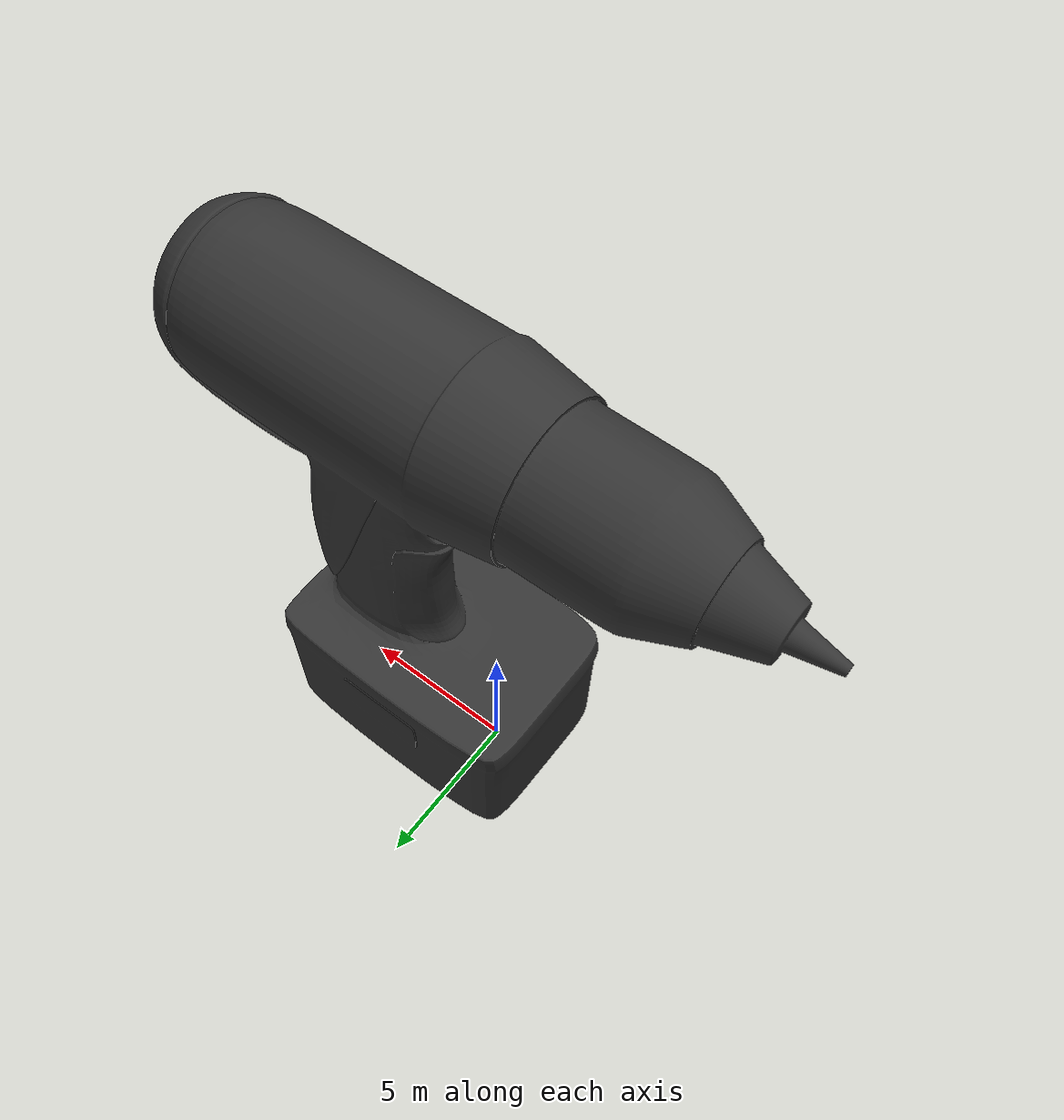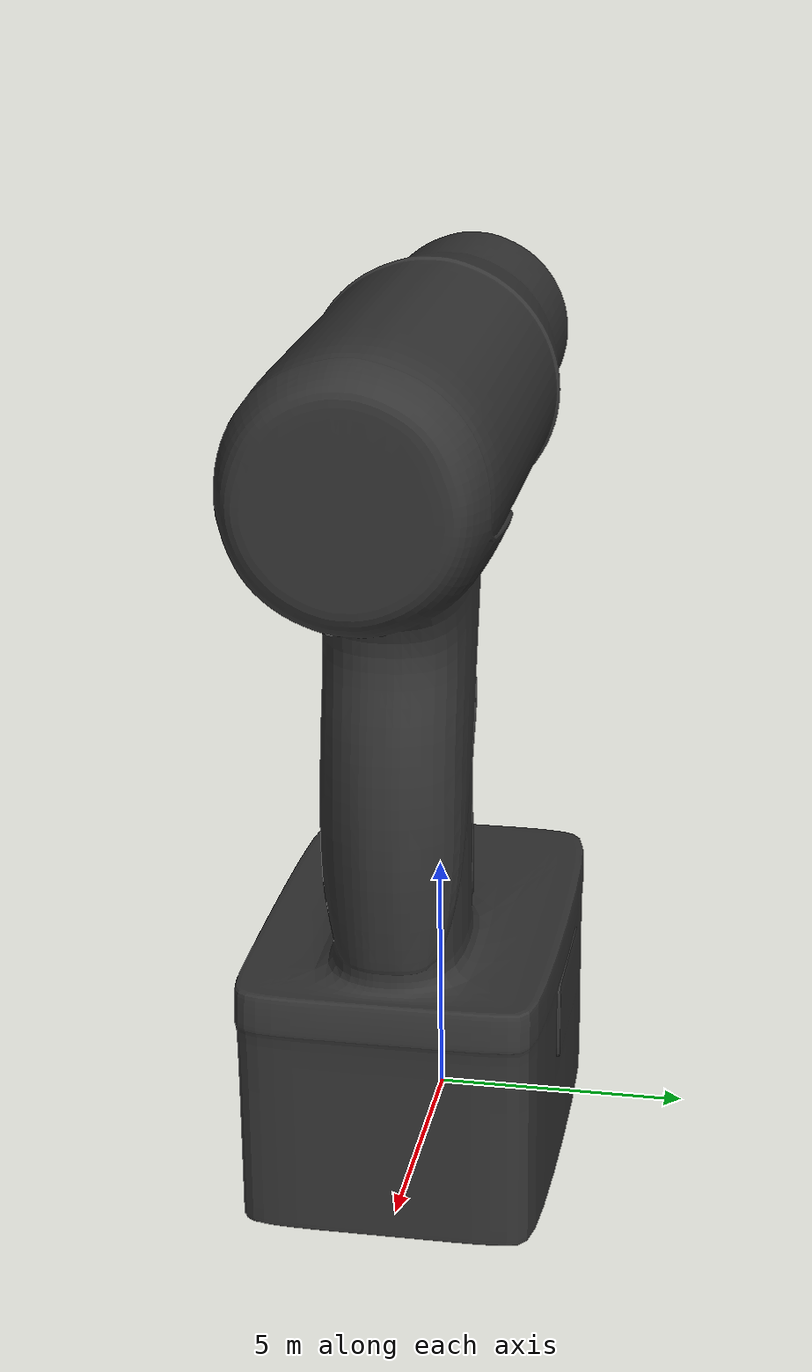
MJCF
<mujoco model="drill">
    <asset>
        <mesh name="drill_mesh" file="drill.obj" scale="1 1 1"/>
    </asset>

    <worldbody>
        <light diffuse=".5 .5 .5" pos="0 0 3" dir="0 0 -1"/>

        <body name="drill_body" pos="0 0 0.2">
            <freejoint/>
            <geom type="mesh" mesh="drill_mesh" rgba="0.2 0.2 0.2 1" mass="1.5"/>

            </body>
    </worldbody>
</mujoco>
